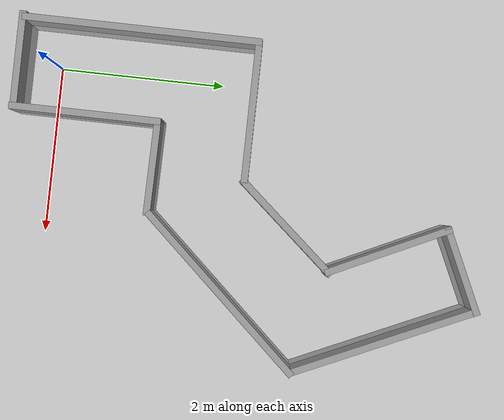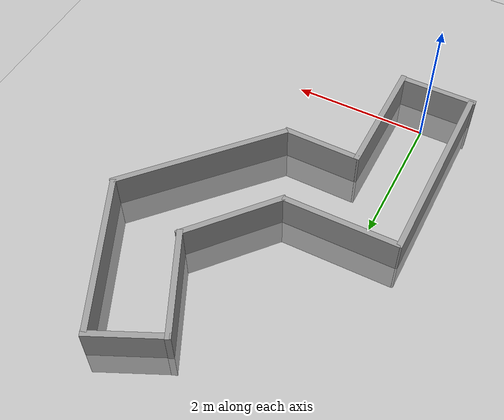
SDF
<sdf version="1.7">
 <world name="default">
  <plugin name="gazebo_ros_state" filename="libgazebo_ros_state.so"/>
  <light name="sun" type="directional">
   <pose>0 0 10 0 -0 0</pose>
   <diffuse>0.8 0.8 0.8 1</diffuse>
   <specular>0.2 0.2 0.2 1</specular>
   <attenuation>
    <range>1000</range>
    <constant>0.9</constant>
    <linear>0.01</linear>
    <quadratic>0.001</quadratic>
   </attenuation>
   <direction>-0.5 0.1 -0.9</direction>
   <spot><inner_angle>0</inner_angle><outer_angle>0</outer_angle><falloff>0</falloff></spot>
  </light>
  <model name="ground_plane">
   <static>1</static>
   <link name="link">
    <collision name="collision">
     <geometry><plane><normal>0 0 1</normal><size>100 100</size></plane></geometry>
     <surface>
      <contact><collide_bitmask>65535</collide_bitmask></contact>
      <friction><ode><mu>100</mu><mu2>50</mu2></ode></friction>
     </surface>
    </collision>
    <visual name="visual">
     <cast_shadows>0</cast_shadows>
     <geometry><plane><normal>0 0 1</normal><size>100 100</size></plane></geometry>
     <material>
      <script><uri>file://media/materials/scripts/gazebo.material</uri><name>Gazebo/Grey</name></script>
     </material>
    </visual>
   </link>
  </model>
  <gravity>0 0 -9.8</gravity>
  <magnetic_field>6e-06 2.3e-05 -4.2e-05</magnetic_field>
  <atmosphere type="adiabatic"/>
  <physics type="ode">
   <max_step_size>0.001</max_step_size>
   <real_time_factor>1</real_time_factor>
   <real_time_update_rate>1000</real_time_update_rate>
  </physics>
  <scene><ambient>0.4 0.4 0.4 1</ambient><background>0.7 0.7 0.7 1</background><shadows>1</shadows></scene>
  <audio><device>default</device></audio>
  <spherical_coordinates>
   <surface_model>EARTH_WGS84</surface_model>
   <latitude_deg>0</latitude_deg>
   <longitude_deg>0</longitude_deg>
   <elevation>0</elevation>
   <heading_deg>0</heading_deg>
  </spherical_coordinates>
  <model name="unit_box_ofir_v2">
   <link name="link_0">
    <inertial>
     <mass>0.244143</mass>
     <inertia>
      <ixx>0.192689</ixx>
      <ixy>0</ixy>
      <ixz>0</ixz>
      <iyy>0.0204891</iyy>
      <iyz>0</iyz>
      <izz>0.172487</izz>
     </inertia>
    </inertial>
    <pose>0.498204 3.08925 0 0 -0 0</pose>
    <visual name="visual">
     <geometry><box><size>0.084097 2.91049 1</size></box></geometry>
     <material>
      <lighting>1</lighting>
      <script><uri>file://media/materials/scripts/gazebo.material</uri><name>Gazebo/Grey</name></script>
      <shader type="pixel"><normal_map>__default__</normal_map></shader>
     </material>
    </visual>
    <collision name="collision">
     <geometry><box><size>0.084097 2.91049 1</size></box></geometry>
     <surface>
      <friction>
       <ode><mu>1</mu><mu2>1</mu2><fdir1>0 0 0</fdir1><slip1>0</slip1><slip2>0</slip2></ode>
       <torsional>
        <coefficient>1</coefficient>
        <patch_radius>0</patch_radius>
        <surface_radius>0</surface_radius>
        <use_patch_radius>1</use_patch_radius>
        <ode><slip>0</slip></ode>
       </torsional>
      </friction>
      <bounce><restitution_coefficient>0</restitution_coefficient><threshold>1e+06</threshold></bounce>
      <contact>
       <collide_without_contact>0</collide_without_contact>
       <collide_without_contact_bitmask>1</collide_without_contact_bitmask>
       <collide_bitmask>1</collide_bitmask>
       <ode>
        <soft_cfm>0</soft_cfm>
        <soft_erp>0.2</soft_erp>
        <kp>1e+13</kp>
        <kd>1</kd>
        <max_vel>0.01</max_vel>
        <min_depth>0</min_depth>
       </ode>
       <bullet>
        <split_impulse>1</split_impulse>
        <split_impulse_penetration_threshold>-0.01</split_impulse_penetration_threshold>
        <soft_cfm>0</soft_cfm>
        <soft_erp>0.2</soft_erp>
        <kp>1e+13</kp>
        <kd>1</kd>
       </bullet>
      </contact>
     </surface>
    </collision>
   </link>
   <link name="link_0_clone">
    <inertial>
     <mass>0.154821</mass>
     <inertia>
      <ixx>0.0567073</ixx>
      <ixy>0</ixy>
      <ixz>0</ixz>
      <iyy>0.012993</iyy>
      <iyz>0</iyz>
      <izz>0.0438969</izz>
     </inertia>
    </inertial>
    <pose>1.58165 2.51249 0 0 -0 0</pose>
    <visual name="visual">
     <geometry><box><size>0.084097 1.84264 1</size></box></geometry>
     <material>
      <lighting>1</lighting>
      <script><uri>file://media/materials/scripts/gazebo.material</uri><name>Gazebo/Grey</name></script>
      <shader type="pixel"><normal_map>__default__</normal_map></shader>
     </material>
    </visual>
    <collision name="collision">
     <geometry><box><size>0.084097 1.84264 1</size></box></geometry>
     <surface>
      <friction>
       <ode><mu>1</mu><mu2>1</mu2><fdir1>0 0 0</fdir1><slip1>0</slip1><slip2>0</slip2></ode>
       <torsional>
        <coefficient>1</coefficient>
        <patch_radius>0</patch_radius>
        <surface_radius>0</surface_radius>
        <use_patch_radius>1</use_patch_radius>
        <ode><slip>0</slip></ode>
       </torsional>
      </friction>
      <bounce><restitution_coefficient>0</restitution_coefficient><threshold>1e+06</threshold></bounce>
      <contact>
       <collide_without_contact>0</collide_without_contact>
       <collide_without_contact_bitmask>1</collide_without_contact_bitmask>
       <collide_bitmask>1</collide_bitmask>
       <ode>
        <soft_cfm>0</soft_cfm>
        <soft_erp>0.2</soft_erp>
        <kp>1e+13</kp>
        <kd>1</kd>
        <max_vel>0.01</max_vel>
        <min_depth>0</min_depth>
       </ode>
       <bullet>
        <split_impulse>1</split_impulse>
        <split_impulse_penetration_threshold>-0.01</split_impulse_penetration_threshold>
        <soft_cfm>0</soft_cfm>
        <soft_erp>0.2</soft_erp>
        <kp>1e+13</kp>
        <kd>1</kd>
       </bullet>
      </contact>
     </surface>
    </collision>
   </link>
   <link name="link_0_clone_0">
    <inertial>
     <mass>0.14443</mass>
     <inertia>
      <ixx>0.0476013</ixx>
      <ixy>0</ixy>
      <ixz>0</ixz>
      <iyy>0.012121</iyy>
      <iyz>0</iyz>
      <izz>0.0356506</izz>
     </inertia>
    </inertial>
    <pose>1.34263 4.51048 0 0 0 -1.56992</pose>
    <visual name="visual">
     <geometry><box><size>0.084097 1.719 1</size></box></geometry>
     <material>
      <lighting>1</lighting>
      <script><uri>file://media/materials/scripts/gazebo.material</uri><name>Gazebo/Grey</name></script>
      <shader type="pixel"><normal_map>__default__</normal_map></shader>
     </material>
    </visual>
    <collision name="collision">
     <geometry><box><size>0.084097 1.719 1</size></box></geometry>
     <surface>
      <friction>
       <ode><mu>1</mu><mu2>1</mu2><fdir1>0 0 0</fdir1><slip1>0</slip1><slip2>0</slip2></ode>
       <torsional>
        <coefficient>1</coefficient>
        <patch_radius>0</patch_radius>
        <surface_radius>0</surface_radius>
        <use_patch_radius>1</use_patch_radius>
        <ode><slip>0</slip></ode>
       </torsional>
      </friction>
      <bounce><restitution_coefficient>0</restitution_coefficient><threshold>1e+06</threshold></bounce>
      <contact>
       <collide_without_contact>0</collide_without_contact>
       <collide_without_contact_bitmask>1</collide_without_contact_bitmask>
       <collide_bitmask>1</collide_bitmask>
       <ode>
        <soft_cfm>0</soft_cfm>
        <soft_erp>0.2</soft_erp>
        <kp>1e+13</kp>
        <kd>1</kd>
        <max_vel>0.01</max_vel>
        <min_depth>0</min_depth>
       </ode>
       <bullet>
        <split_impulse>1</split_impulse>
        <split_impulse_penetration_threshold>-0.01</split_impulse_penetration_threshold>
        <soft_cfm>0</soft_cfm>
        <soft_erp>0.2</soft_erp>
        <kp>1e+13</kp>
        <kd>1</kd>
       </bullet>
      </contact>
     </surface>
    </collision>
   </link>
   <link name="link_0_clone_0_clone">
    <inertial>
     <mass>0.221157</mass>
     <inertia>
      <ixx>0.146116</ixx>
      <ixy>0</ixy>
      <ixz>0</ixz>
      <iyy>0.0185601</iyy>
      <iyz>0</iyz>
      <izz>0.127817</izz>
     </inertia>
    </inertial>
    <pose>3.56693 4.36102 0 0 0 -0.739521</pose>
    <visual name="visual">
     <geometry><box><size>0.084097 2.63217 1</size></box></geometry>
     <material>
      <lighting>1</lighting>
      <script><uri>file://media/materials/scripts/gazebo.material</uri><name>Gazebo/Grey</name></script>
      <shader type="pixel"><normal_map>__default__</normal_map></shader>
     </material>
    </visual>
    <collision name="collision">
     <geometry><box><size>0.084097 2.63217 1</size></box></geometry>
     <surface>
      <friction>
       <ode><mu>1</mu><mu2>1</mu2><fdir1>0 0 0</fdir1><slip1>0</slip1><slip2>0</slip2></ode>
       <torsional>
        <coefficient>1</coefficient>
        <patch_radius>0</patch_radius>
        <surface_radius>0</surface_radius>
        <use_patch_radius>1</use_patch_radius>
        <ode><slip>0</slip></ode>
       </torsional>
      </friction>
      <bounce><restitution_coefficient>0</restitution_coefficient><threshold>1e+06</threshold></bounce>
      <contact>
       <collide_without_contact>0</collide_without_contact>
       <collide_without_contact_bitmask>1</collide_without_contact_bitmask>
       <collide_bitmask>1</collide_bitmask>
       <ode>
        <soft_cfm>0</soft_cfm>
        <soft_erp>0.2</soft_erp>
        <kp>1e+13</kp>
        <kd>1</kd>
        <max_vel>0.01</max_vel>
        <min_depth>0</min_depth>
       </ode>
       <bullet>
        <split_impulse>1</split_impulse>
        <split_impulse_penetration_threshold>-0.01</split_impulse_penetration_threshold>
        <soft_cfm>0</soft_cfm>
        <soft_erp>0.2</soft_erp>
        <kp>1e+13</kp>
        <kd>1</kd>
       </bullet>
      </contact>
     </surface>
    </collision>
   </link>
   <link name="link_0_clone_0_clone_0">
    <inertial>
     <mass>0.096568</mass>
     <inertia>
      <ixx>0.0186777</ixx>
      <ixy>0</ixy>
      <ixz>0</ixz>
      <iyy>0.00810425</iyy>
      <iyz>0</iyz>
      <izz>0.0106873</izz>
     </inertia>
    </inertial>
    <pose>1.00652 1.64464 0 0 0 -1.56992</pose>
    <visual name="visual">
     <geometry><box><size>0.084097 1.14934 1</size></box></geometry>
     <material>
      <lighting>1</lighting>
      <script><uri>file://media/materials/scripts/gazebo.material</uri><name>Gazebo/Grey</name></script>
      <shader type="pixel"><normal_map>__default__</normal_map></shader>
     </material>
    </visual>
    <collision name="collision">
     <geometry><box><size>0.084097 1.14934 1</size></box></geometry>
     <surface>
      <friction>
       <ode><mu>1</mu><mu2>1</mu2><fdir1>0 0 0</fdir1><slip1>0</slip1><slip2>0</slip2></ode>
       <torsional>
        <coefficient>1</coefficient>
        <patch_radius>0</patch_radius>
        <surface_radius>0</surface_radius>
        <use_patch_radius>1</use_patch_radius>
        <ode><slip>0</slip></ode>
       </torsional>
      </friction>
      <bounce><restitution_coefficient>0</restitution_coefficient><threshold>1e+06</threshold></bounce>
      <contact>
       <collide_without_contact>0</collide_without_contact>
       <collide_without_contact_bitmask>1</collide_without_contact_bitmask>
       <collide_bitmask>1</collide_bitmask>
       <ode>
        <soft_cfm>0</soft_cfm>
        <soft_erp>0.2</soft_erp>
        <kp>1e+13</kp>
        <kd>1</kd>
        <max_vel>0.01</max_vel>
        <min_depth>0</min_depth>
       </ode>
       <bullet>
        <split_impulse>1</split_impulse>
        <split_impulse_penetration_threshold>-0.01</split_impulse_penetration_threshold>
        <soft_cfm>0</soft_cfm>
        <soft_erp>0.2</soft_erp>
        <kp>1e+13</kp>
        <kd>1</kd>
       </bullet>
      </contact>
     </surface>
    </collision>
   </link>
   <link name="link_0_clone_0_clone_0_clone">
    <inertial>
     <mass>0.0942124</mass>
     <inertia>
      <ixx>0.0177223</ixx>
      <ixy>0</ixy>
      <ixz>0</ixz>
      <iyy>0.00790656</iyy>
      <iyz>0</iyz>
      <izz>0.00992678</izz>
     </inertia>
    </inertial>
    <pose>2.98073 7.23746 0 0 0 -1.13999</pose>
    <visual name="visual">
     <geometry><box><size>0.084097 1.1213 1</size></box></geometry>
     <material>
      <lighting>1</lighting>
      <script><uri>file://media/materials/scripts/gazebo.material</uri><name>Gazebo/Grey</name></script>
      <shader type="pixel"><normal_map>__default__</normal_map></shader>
     </material>
    </visual>
    <collision name="collision">
     <geometry><box><size>0.084097 1.1213 1</size></box></geometry>
     <surface>
      <friction>
       <ode><mu>1</mu><mu2>1</mu2><fdir1>0 0 0</fdir1><slip1>0</slip1><slip2>0</slip2></ode>
       <torsional>
        <coefficient>1</coefficient>
        <patch_radius>0</patch_radius>
        <surface_radius>0</surface_radius>
        <use_patch_radius>1</use_patch_radius>
        <ode><slip>0</slip></ode>
       </torsional>
      </friction>
      <bounce><restitution_coefficient>0</restitution_coefficient><threshold>1e+06</threshold></bounce>
      <contact>
       <collide_without_contact>0</collide_without_contact>
       <collide_without_contact_bitmask>1</collide_without_contact_bitmask>
       <collide_bitmask>1</collide_bitmask>
       <ode>
        <soft_cfm>0</soft_cfm>
        <soft_erp>0.2</soft_erp>
        <kp>1e+13</kp>
        <kd>1</kd>
        <max_vel>0.01</max_vel>
        <min_depth>0</min_depth>
       </ode>
       <bullet>
        <split_impulse>1</split_impulse>
        <split_impulse_penetration_threshold>-0.01</split_impulse_penetration_threshold>
        <soft_cfm>0</soft_cfm>
        <soft_erp>0.2</soft_erp>
        <kp>1e+13</kp>
        <kd>1</kd>
       </bullet>
      </contact>
     </surface>
    </collision>
   </link>
   <link name="link_0_clone_0_clone_clone">
    <inertial>
     <mass>0.13282</mass>
     <inertia>
      <ixx>0.0387271</ixx>
      <ixy>0</ixy>
      <ixz>0</ixz>
      <iyy>0.0111466</iyy>
      <iyz>0</iyz>
      <izz>0.0277371</izz>
     </inertia>
    </inertial>
    <pose>2.68191 5.07484 0 0 -0 2.42878</pose>
    <visual name="visual">
     <geometry><box><size>0.084097 1.5808 1</size></box></geometry>
     <material>
      <lighting>1</lighting>
      <script><uri>file://media/materials/scripts/gazebo.material</uri><name>Gazebo/Grey</name></script>
      <shader type="pixel"><normal_map>__default__</normal_map></shader>
     </material>
    </visual>
    <collision name="collision">
     <geometry><box><size>0.084097 1.5808 1</size></box></geometry>
     <surface>
      <friction>
       <ode><mu>1</mu><mu2>1</mu2><fdir1>0 0 0</fdir1><slip1>0</slip1><slip2>0</slip2></ode>
       <torsional>
        <coefficient>1</coefficient>
        <patch_radius>0</patch_radius>
        <surface_radius>0</surface_radius>
        <use_patch_radius>1</use_patch_radius>
        <ode><slip>0</slip></ode>
       </torsional>
      </friction>
      <bounce><restitution_coefficient>0</restitution_coefficient><threshold>1e+06</threshold></bounce>
      <contact>
       <collide_without_contact>0</collide_without_contact>
       <collide_without_contact_bitmask>1</collide_without_contact_bitmask>
       <collide_bitmask>1</collide_bitmask>
       <ode>
        <soft_cfm>0</soft_cfm>
        <soft_erp>0.2</soft_erp>
        <kp>1e+13</kp>
        <kd>1</kd>
        <max_vel>0.01</max_vel>
        <min_depth>0</min_depth>
       </ode>
       <bullet>
        <split_impulse>1</split_impulse>
        <split_impulse_penetration_threshold>-0.01</split_impulse_penetration_threshold>
        <soft_cfm>0</soft_cfm>
        <soft_erp>0.2</soft_erp>
        <kp>1e+13</kp>
        <kd>1</kd>
       </bullet>
      </contact>
     </surface>
    </collision>
   </link>
   <link name="link_0_clone_0_clone_clone_0_clone_clone">
    <inertial>
     <mass>0.199556</mass>
     <inertia>
      <ixx>0.110438</ixx>
      <ixy>0</ixy>
      <ixz>0</ixz>
      <iyy>0.0167473</iyy>
      <iyz>0</iyz>
      <izz>0.0939259</izz>
     </inertia>
    </inertial>
    <pose>3.93927 6.36729 0 0 0 -2.71728</pose>
    <visual name="visual">
     <geometry><box><size>0.084097 2.37508 1</size></box></geometry>
     <material>
      <lighting>1</lighting>
      <script><uri>file://media/materials/scripts/gazebo.material</uri><name>Gazebo/Grey</name></script>
      <shader type="pixel"><normal_map>__default__</normal_map></shader>
     </material>
    </visual>
    <collision name="collision">
     <geometry><box><size>0.084097 2.37508 1</size></box></geometry>
     <surface>
      <friction>
       <ode><mu>1</mu><mu2>1</mu2><fdir1>0 0 0</fdir1><slip1>0</slip1><slip2>0</slip2></ode>
       <torsional>
        <coefficient>1</coefficient>
        <patch_radius>0</patch_radius>
        <surface_radius>0</surface_radius>
        <use_patch_radius>1</use_patch_radius>
        <ode><slip>0</slip></ode>
       </torsional>
      </friction>
      <bounce><restitution_coefficient>0</restitution_coefficient><threshold>1e+06</threshold></bounce>
      <contact>
       <collide_without_contact>0</collide_without_contact>
       <collide_without_contact_bitmask>1</collide_without_contact_bitmask>
       <collide_bitmask>1</collide_bitmask>
       <ode>
        <soft_cfm>0</soft_cfm>
        <soft_erp>0.2</soft_erp>
        <kp>1e+13</kp>
        <kd>1</kd>
        <max_vel>0.01</max_vel>
        <min_depth>0</min_depth>
       </ode>
       <bullet>
        <split_impulse>1</split_impulse>
        <split_impulse_penetration_threshold>-0.01</split_impulse_penetration_threshold>
        <soft_cfm>0</soft_cfm>
        <soft_erp>0.2</soft_erp>
        <kp>1e+13</kp>
        <kd>1</kd>
       </bullet>
      </contact>
     </surface>
    </collision>
   </link>
   <link name="link_0_clone_0_clone_clone_0_clone_clone_clone">
    <inertial>
     <mass>0.136321</mass>
     <inertia>
      <ixx>0.0412652</ixx>
      <ixy>0</ixy>
      <ixz>0</ixz>
      <iyy>0.0114404</iyy>
      <iyz>0</iyz>
      <izz>0.0299855</izz>
     </inertia>
    </inertial>
    <pose>2.83345 6.32925 3.2e-05 1.7e-05 0.001087 -2.70118</pose>
    <visual name="visual">
     <geometry><box><size>0.084097 1.62249 1</size></box></geometry>
     <material>
      <lighting>1</lighting>
      <script><uri>file://media/materials/scripts/gazebo.material</uri><name>Gazebo/Grey</name></script>
      <shader type="pixel"><normal_map>__default__</normal_map></shader>
     </material>
    </visual>
    <collision name="collision">
     <geometry><box><size>0.084097 1.62249 1</size></box></geometry>
     <surface>
      <friction>
       <ode><mu>1</mu><mu2>1</mu2><fdir1>0 0 0</fdir1><slip1>0</slip1><slip2>0</slip2></ode>
       <torsional>
        <coefficient>1</coefficient>
        <patch_radius>0</patch_radius>
        <surface_radius>0</surface_radius>
        <use_patch_radius>1</use_patch_radius>
        <ode><slip>0</slip></ode>
       </torsional>
      </friction>
      <bounce><restitution_coefficient>0</restitution_coefficient><threshold>1e+06</threshold></bounce>
      <contact>
       <collide_without_contact>0</collide_without_contact>
       <collide_without_contact_bitmask>1</collide_without_contact_bitmask>
       <collide_bitmask>1</collide_bitmask>
       <ode>
        <soft_cfm>0</soft_cfm>
        <soft_erp>0.2</soft_erp>
        <kp>1e+13</kp>
        <kd>1</kd>
        <max_vel>0.01</max_vel>
        <min_depth>0</min_depth>
       </ode>
       <bullet>
        <split_impulse>1</split_impulse>
        <split_impulse_penetration_threshold>-0.01</split_impulse_penetration_threshold>
        <soft_cfm>0</soft_cfm>
        <soft_erp>0.2</soft_erp>
        <kp>1e+13</kp>
        <kd>1</kd>
       </bullet>
      </contact>
     </surface>
    </collision>
   </link>
   <link name="link_0_clone_1">
    <inertial>
     <mass>0.0967648</mass>
     <inertia>
      <ixx>0.0187592</ixx>
      <ixy>0</ixy>
      <ixz>0</ixz>
      <iyy>0.00812076</iyy>
      <iyz>0</iyz>
      <izz>0.0107524</izz>
     </inertia>
    </inertial>
    <pose>2.1454 3.38982 0 0 0 -1.58339</pose>
    <visual name="visual">
     <geometry><box><size>0.084097 1.15168 1</size></box></geometry>
     <material>
      <lighting>1</lighting>
      <script><uri>file://media/materials/scripts/gazebo.material</uri><name>Gazebo/Grey</name></script>
      <shader type="pixel"><normal_map>__default__</normal_map></shader>
     </material>
    </visual>
    <collision name="collision">
     <geometry><box><size>0.084097 1.15168 1</size></box></geometry>
     <surface>
      <friction>
       <ode><mu>1</mu><mu2>1</mu2><fdir1>0 0 0</fdir1><slip1>0</slip1><slip2>0</slip2></ode>
       <torsional>
        <coefficient>1</coefficient>
        <patch_radius>0</patch_radius>
        <surface_radius>0</surface_radius>
        <use_patch_radius>1</use_patch_radius>
        <ode><slip>0</slip></ode>
       </torsional>
      </friction>
      <bounce><restitution_coefficient>0</restitution_coefficient><threshold>1e+06</threshold></bounce>
      <contact>
       <collide_without_contact>0</collide_without_contact>
       <collide_without_contact_bitmask>1</collide_without_contact_bitmask>
       <collide_bitmask>1</collide_bitmask>
       <ode>
        <soft_cfm>0</soft_cfm>
        <soft_erp>0.2</soft_erp>
        <kp>1e+13</kp>
        <kd>1</kd>
        <max_vel>0.01</max_vel>
        <min_depth>0</min_depth>
       </ode>
       <bullet>
        <split_impulse>1</split_impulse>
        <split_impulse_penetration_threshold>-0.01</split_impulse_penetration_threshold>
        <soft_cfm>0</soft_cfm>
        <soft_erp>0.2</soft_erp>
        <kp>1e+13</kp>
        <kd>1</kd>
       </bullet>
      </contact>
     </surface>
    </collision>
   </link>
   <static>1</static>
   <pose>-1.04204 -2.12548 0 0 -0 0</pose>
  </model>
 </world>
</sdf>
